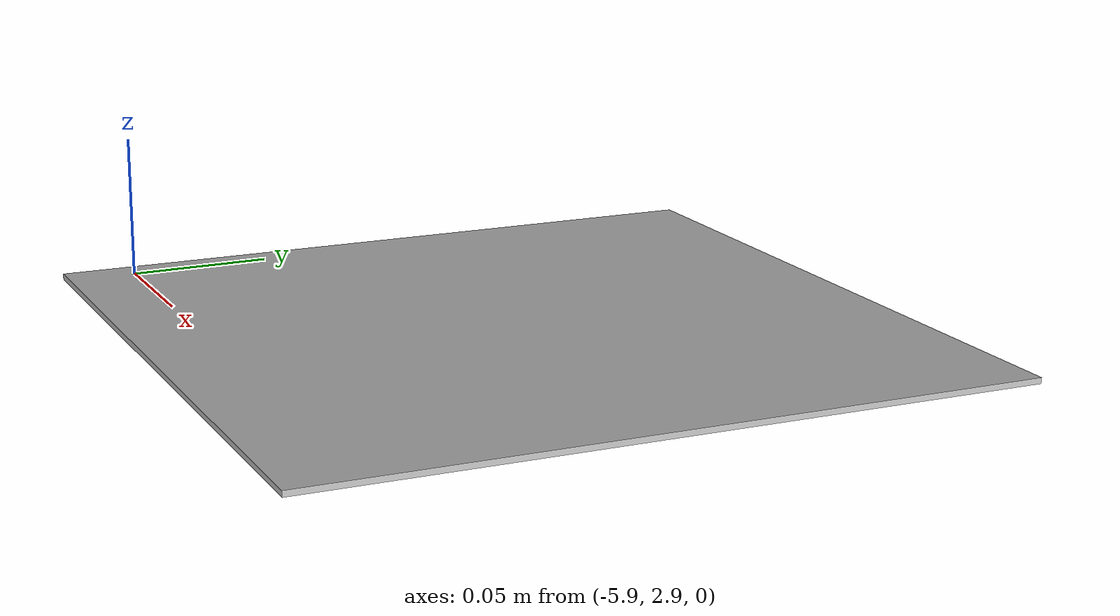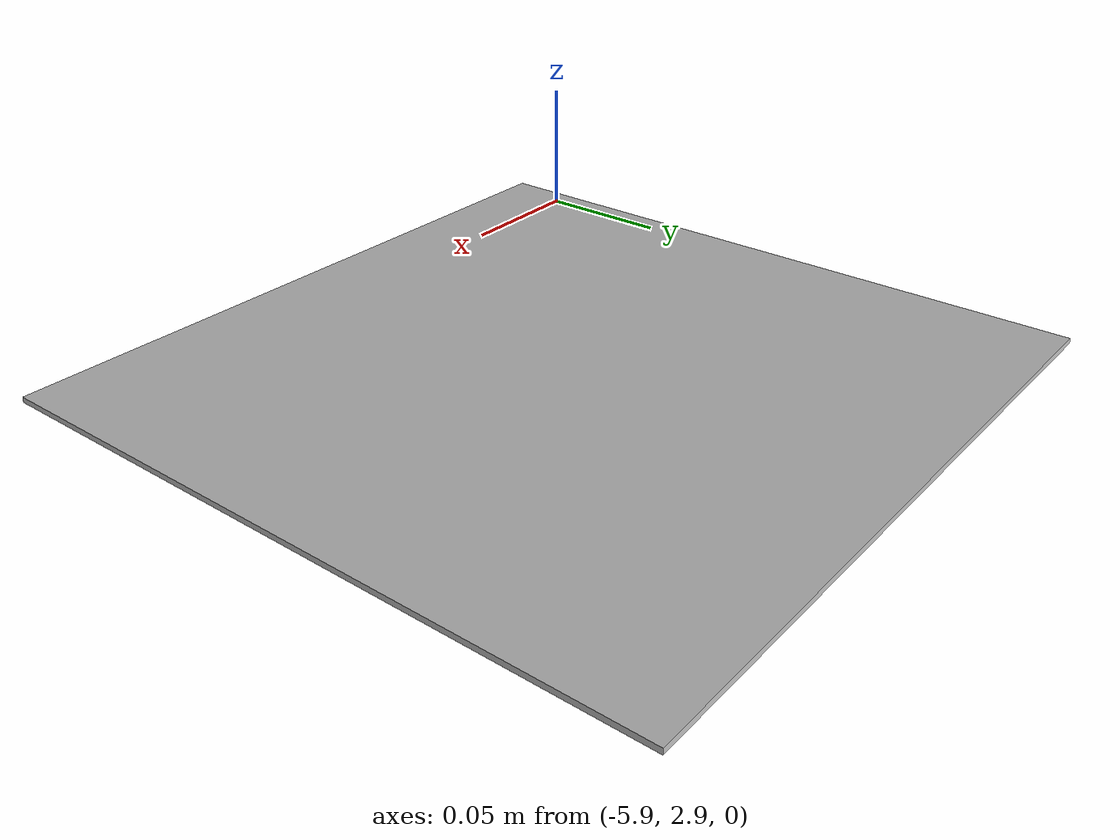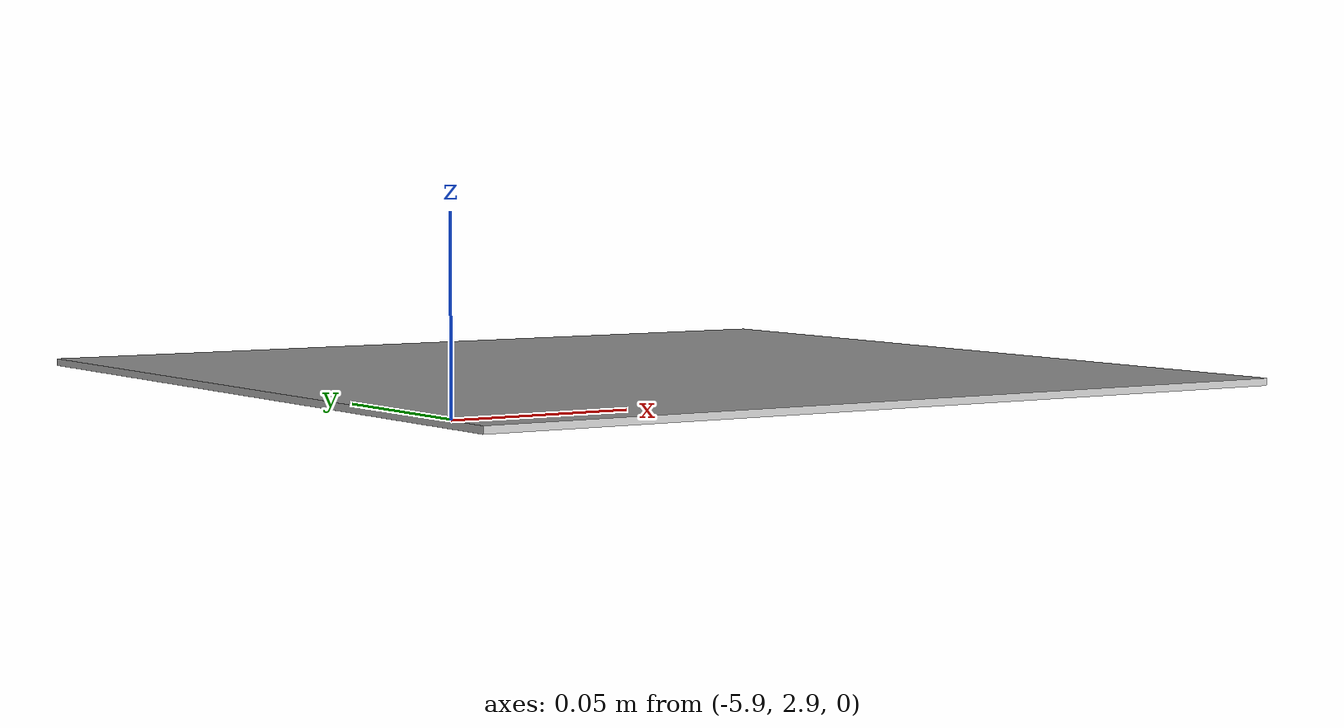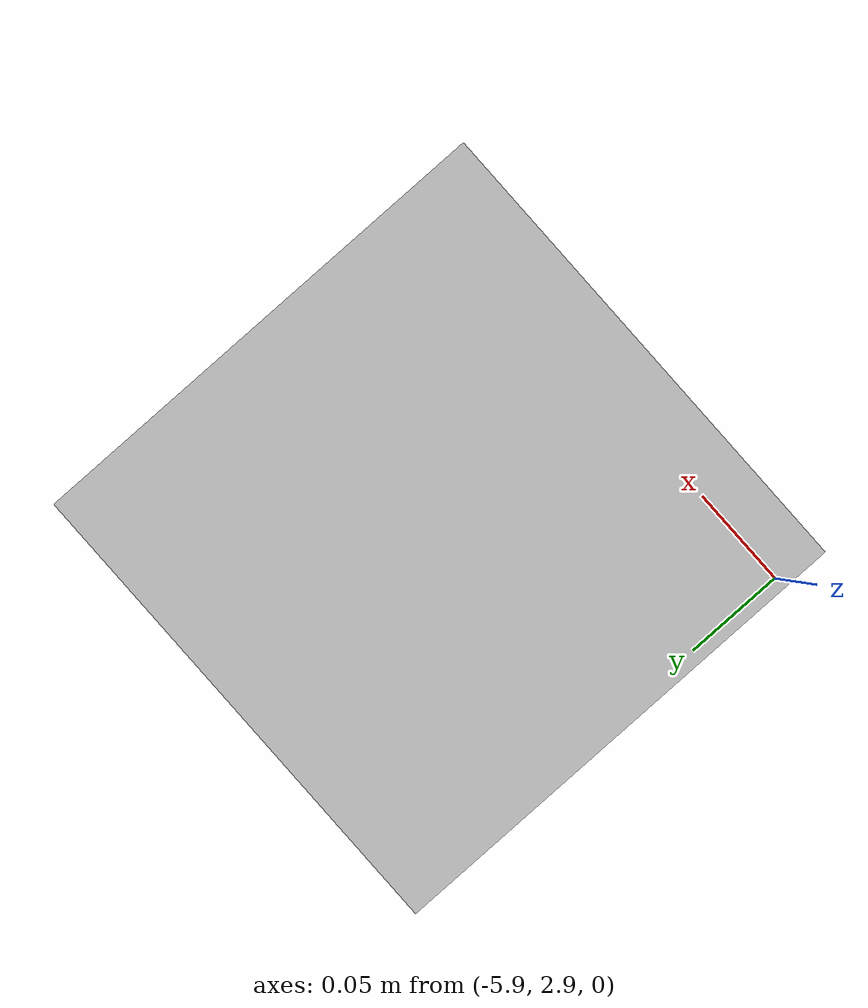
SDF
<?xml version="1.0" ?>
<sdf version="1.5">
    <model name='road_plane_new'>
      <static>1</static>
      <link name='link'>
        <collision name='collision'>
          <geometry>
            <box>
              <size>0.25 0.25 0.002</size>
            </box>
          </geometry>
          <max_contacts>10</max_contacts>
          <surface>
            <contact>
              <ode/>
            </contact>
            <bounce/>
            <friction>
              <ode/>
            </friction>
          </surface>
        </collision>
        <visual name='visual'>
          <cast_shadows>0</cast_shadows>
          <geometry>
            <box>
              <size>0.25 0.25 0.002</size>
            </box>
          </geometry>
          <material>
            <script>
              <uri>model://road_plane_new/materials/scripts</uri>
              <uri>model://road_plane_new/materials/textures</uri>
              <name>vrc/plane</name>
            </script>
          </material>
        </visual>
        <self_collide>0</self_collide>
        <kinematic>0</kinematic>
        <gravity>1</gravity>
      </link>
      <pose>-5.78098 3 0 0 -0 0</pose>
    </model>
</sdf>
